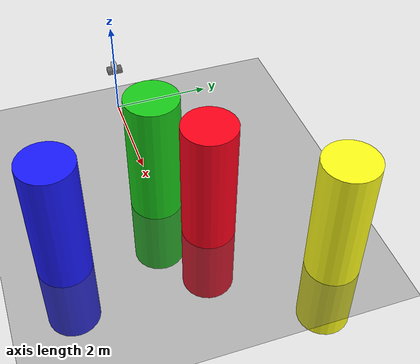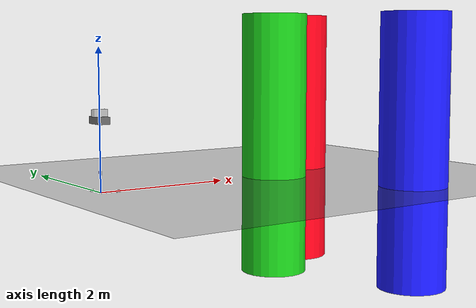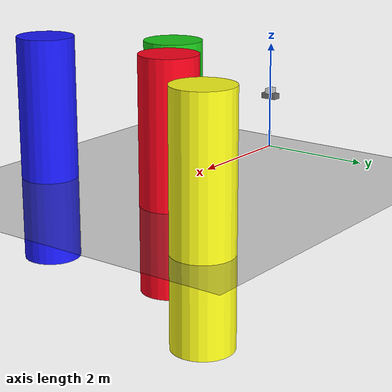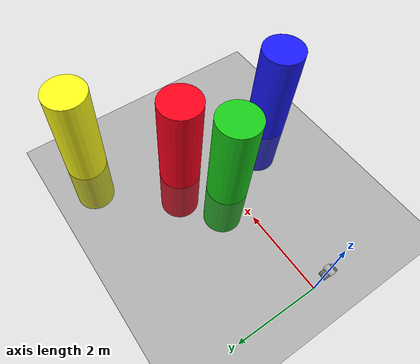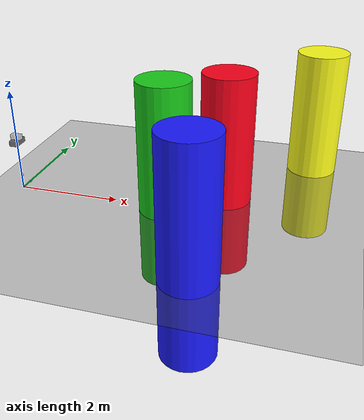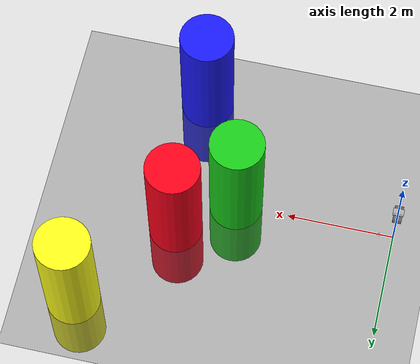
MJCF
<mujoco model="depth_camera_test">
  <option timestep="0.005"/>

  <option solver="CG" tolerance="1e-6"/>

  <size njmax="50" nconmax="10" nstack="2000"/>

  <visual>
    <global  offwidth="1280" offheight="720"/>
    <map znear="0.05" zfar="10.0"/>
    <rgba haze=".3 .3 .3 0.1" fog="0 0 0 0.1"/>
  </visual>

  <default>
    <joint type="hinge" pos="0 0 0" axis="0 0 1" damping="0.1"/>
    <motor ctrllimited="true" ctrlrange="-6 6"/>
  </default>

  <asset>
    <texture type="skybox" builtin="gradient" rgb1="0.6 0.6 0.8" rgb2="0 0 0" width="512" height="512"/>

    <texture name="texplane" type="2d" builtin="checker" rgb1=".25 .25 .25" rgb2=".3 .3 .3" width="512" height="512" mark="cross" markrgb=".8 .8 .8"/>

    <material name="matplane" reflectance="0.0" texture="texplane" texrepeat="1 1" texuniform="true"/>

  </asset>

  <worldbody>

    <geom name="floor" pos="0 0 0" size="0 0 1" type="plane" material="matplane"/>
    <light directional="true" diffuse=".8 .8 .8" specular=".1 .1 .1" pos="0 0 5" dir="0 0 -1"/>

    <body name="base_link" pos="0 0 1" mocap="true">
      <geom type="box" size="0.08 0.15 0.05" rgba="0.3 0.3 0.3 0.8"/>
      <body name="camera" pos="0 0 0.1" euler="90 -90 0">
        <geom type="box" size="0.05 0.05 0.1" rgba="0.5 0.5 0.5 0.5"/>
        <camera name="camera" mode="fixed" fovy="45"/>
      </body>
    </body>

    <body name="X_axis_right" pos="0.15 0 0.0" >
      <geom type="box" size="0.15 0.008 0.008" rgba="1 0 0 1"/>
      <geom type="box" pos="0.12 0 0" size="0.03 0.015 0.015" rgba="1 0 0 1"/>
    </body>
    <body name="Y_axis_forward" pos="0 0.15 0.0" >
      <geom type="box" size="0.008 0.15 0.008" rgba="0 1 0 1"/>
      <geom type="box" pos="0 0.12 0" size="0.015 0.03 0.015" rgba="0 1 0 1"/>
    </body>
    <body name="Z_axis_up" pos="0.0 0 0.15" >
      <geom type="box" size="0.008 0.008 0.15" rgba="0 0 1 1"/>
      <geom type="box" pos="0 0 0.12" size="0.015 0.015 0.03" rgba="0 0 1 1"/>
    </body>

    <body name="pole-1" pos="3 0 0.5">
      <geom type="cylinder" size="0.5 2.0" rgba="0.1 0.8 0.1 1"/>
    </body>

    <body name="pole-2" pos="4 -2 0.5">
      <geom type="cylinder" size="0.5 2.0" rgba="0.1 0.1 1.0 1"/>
    </body>

    <body name="pole-3" pos="4 0.7 0.5">
      <geom type="cylinder" size="0.5 2.0" rgba="1.0 0.0 0.1 1"/>
    </body>

    <body name="pole-4" pos="5.5 2.5 0.5">
      <geom type="cylinder" size="0.5 2.0" rgba="1.0 1.0 0.1 1"/>
    </body>

  </worldbody>

</mujoco>
